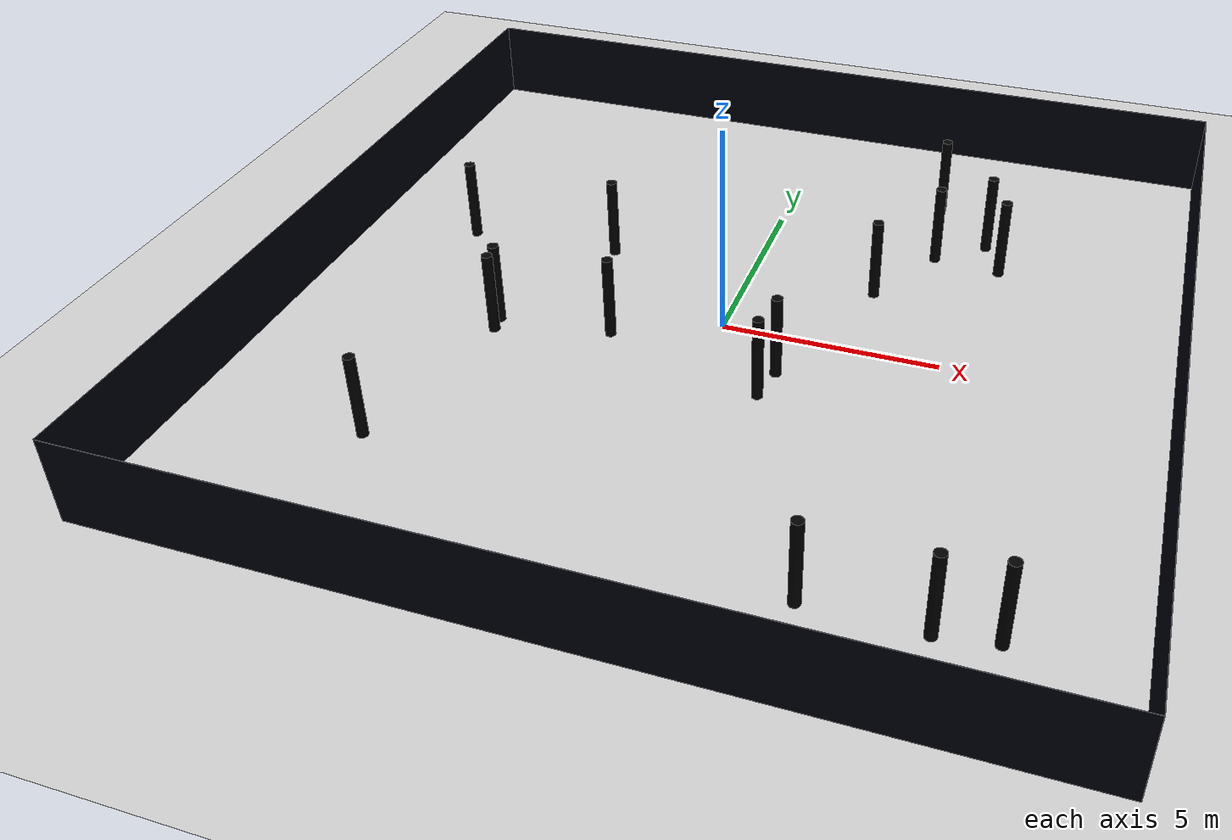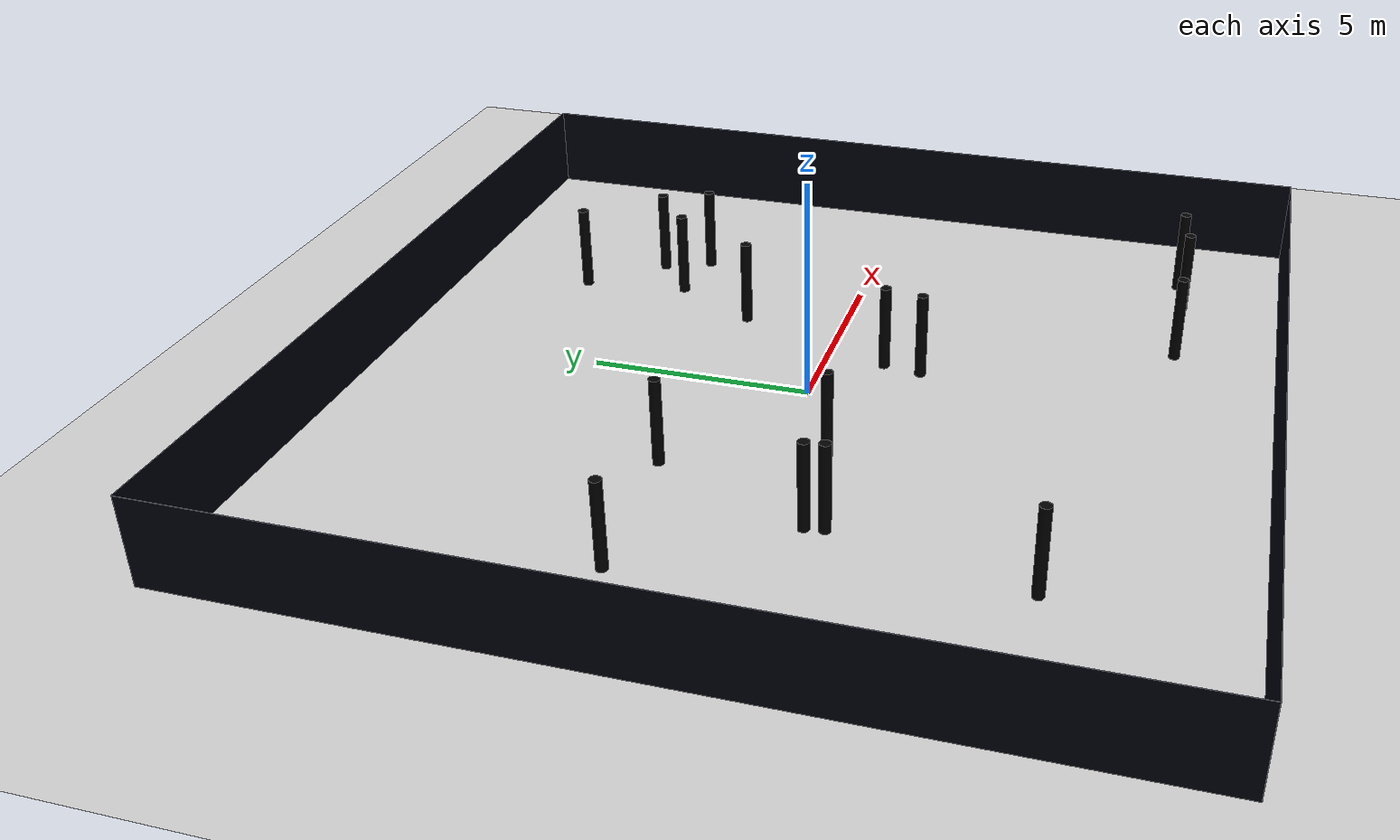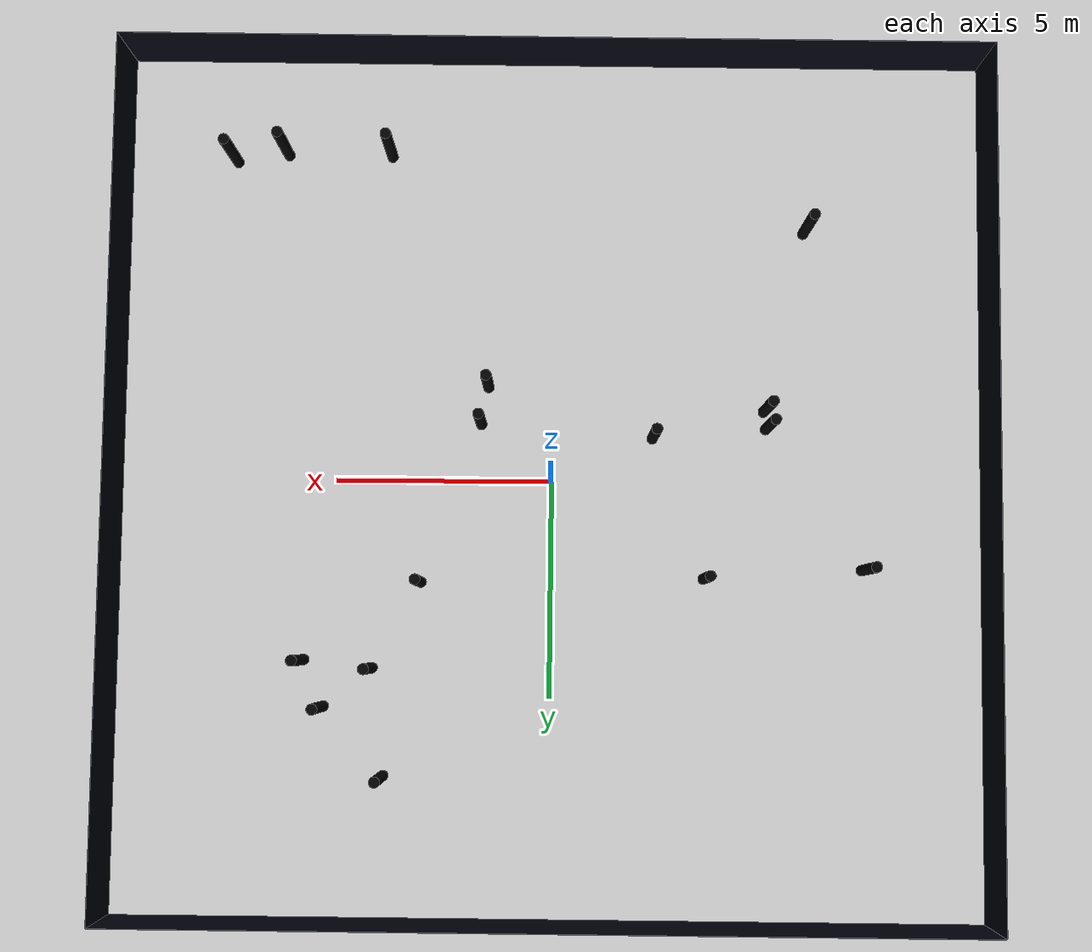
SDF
<?xml version="1.0"?>
<sdf version='1.8'>
    <world name='maze'>
        <physics name='1ms' type='ignored'>
            <max_step_size>0.003</max_step_size>
            <real_time_factor>1</real_time_factor>
            <real_time_update_rate>1000</real_time_update_rate>
        </physics>
        <plugin name='ignition::gazebo::systems::Physics' filename='ignition-gazebo-physics-system' />
        <plugin name='ignition::gazebo::systems::UserCommands' filename='ignition-gazebo-user-commands-system' />
        <plugin name='ignition::gazebo::systems::SceneBroadcaster' filename='ignition-gazebo-scene-broadcaster-system' />
        <plugin name='ignition::gazebo::systems::Contact' filename='ignition-gazebo-contact-system' />
        <light name='sun' type='directional'>
            <cast_shadows>1</cast_shadows>
            <pose>0 0 10 0 -0 0</pose>
            <diffuse>0.8 0.8 0.8 1</diffuse>
            <specular>0.2 0.2 0.2 1</specular>
            <attenuation>
                <range>1000</range>
                <constant>0.90000000000000002</constant>
                <linear>0.01</linear>
                <quadratic>0.001</quadratic>
            </attenuation>
            <direction>-0.5 0.1 -0.9</direction>
            <spot>
                <inner_angle>0</inner_angle>
                <outer_angle>0</outer_angle>
                <falloff>0</falloff>
            </spot>
        </light>
        <gravity>0 0 -9.8</gravity>
        <magnetic_field>6e-06 2.3e-05 -4.2e-05</magnetic_field>
        <atmosphere type='adiabatic' />
        <scene>
            <ambient>0.4 0.4 0.4 1</ambient>
            <background>0.7 0.7 0.7 1</background>
            <shadows>1</shadows>
        </scene>
        <model name='ground_plane'>
            <static>1</static>
            <link name='link'>
                <collision name='collision'>
                    <geometry>
                        <plane>
                            <normal>0 0 1</normal>
                            <size>100 100</size>
                        </plane>
                    </geometry>
                    <surface>
                        <friction>
                            <ode />
                        </friction>
                        <bounce />
                        <contact />
                    </surface>
                </collision>
                <visual name='visual'>
                    <geometry>
                        <plane>
                            <normal>0 0 1</normal>
                            <size>100 100</size>
                        </plane>
                    </geometry>
                    <material>
                        <ambient>0.8 0.8 0.8 1</ambient>
                        <diffuse>0.8 0.8 0.8 1</diffuse>
                        <specular>0.8 0.8 0.8 1</specular>
                    </material>
                    <plugin name='__default__' filename='__default__' />
                </visual>
            </link>
            <plugin name='__default__' filename='__default__' />
            <pose>0 0 0 0 -0 0</pose>
        </model>
        <model name='pillar_1'>
            <pose>-3.5437951631231233 2.1985635800871073 1 0 0 0</pose>
            <static>true</static>
            <link name='pillar_1_link'>
                <collision name='pillar_1_collision'>
                    <geometry>
                        <cylinder>
                            <radius>0.125</radius>
                            <length>2.0</length>
                        </cylinder>
                    </geometry>
                </collision>
                <visual name='pillar_1_visual'>
                    <geometry>
                        <cylinder>
                            <radius>0.125</radius>
                            <length>2.0</length>
                        </cylinder>
                    </geometry>
                    <material>
                        <ambient>0 0 0 1</ambient>
                        <diffuse>0 0 0 1</diffuse>
                        <specular>0 0 0 1</specular>
                    </material>
                </visual>
            </link>
        </model>
        <model name='pillar_2'>
            <pose>-2.3421461110227533 -1.065275459809806 1 0 0 0</pose>
            <static>true</static>
            <link name='pillar_2_link'>
                <collision name='pillar_2_collision'>
                    <geometry>
                        <cylinder>
                            <radius>0.125</radius>
                            <length>2.0</length>
                        </cylinder>
                    </geometry>
                </collision>
                <visual name='pillar_2_visual'>
                    <geometry>
                        <cylinder>
                            <radius>0.125</radius>
                            <length>2.0</length>
                        </cylinder>
                    </geometry>
                    <material>
                        <ambient>0 0 0 1</ambient>
                        <diffuse>0 0 0 1</diffuse>
                        <specular>0 0 0 1</specular>
                    </material>
                </visual>
            </link>
        </model>
        <model name='pillar_3'>
            <pose>-4.940489500323446 -1.721387673652126 1 0 0 0</pose>
            <static>true</static>
            <link name='pillar_3_link'>
                <collision name='pillar_3_collision'>
                    <geometry>
                        <cylinder>
                            <radius>0.125</radius>
                            <length>2.0</length>
                        </cylinder>
                    </geometry>
                </collision>
                <visual name='pillar_3_visual'>
                    <geometry>
                        <cylinder>
                            <radius>0.125</radius>
                            <length>2.0</length>
                        </cylinder>
                    </geometry>
                    <material>
                        <ambient>0 0 0 1</ambient>
                        <diffuse>0 0 0 1</diffuse>
                        <specular>0 0 0 1</specular>
                    </material>
                </visual>
            </link>
        </model>
        <model name='pillar_4'>
            <pose>3.853247368757181 -7.720480561144216 1 0 0 0</pose>
            <static>true</static>
            <link name='pillar_4_link'>
                <collision name='pillar_4_collision'>
                    <geometry>
                        <cylinder>
                            <radius>0.125</radius>
                            <length>2.0</length>
                        </cylinder>
                    </geometry>
                </collision>
                <visual name='pillar_4_visual'>
                    <geometry>
                        <cylinder>
                            <radius>0.125</radius>
                            <length>2.0</length>
                        </cylinder>
                    </geometry>
                    <material>
                        <ambient>0 0 0 1</ambient>
                        <diffuse>0 0 0 1</diffuse>
                        <specular>0 0 0 1</specular>
                    </material>
                </visual>
            </link>
        </model>
        <model name='pillar_5'>
            <pose>7.510950945952622 -7.548718916330586 1 0 0 0</pose>
            <static>true</static>
            <link name='pillar_5_link'>
                <collision name='pillar_5_collision'>
                    <geometry>
                        <cylinder>
                            <radius>0.125</radius>
                            <length>2.0</length>
                        </cylinder>
                    </geometry>
                </collision>
                <visual name='pillar_5_visual'>
                    <geometry>
                        <cylinder>
                            <radius>0.125</radius>
                            <length>2.0</length>
                        </cylinder>
                    </geometry>
                    <material>
                        <ambient>0 0 0 1</ambient>
                        <diffuse>0 0 0 1</diffuse>
                        <specular>0 0 0 1</specular>
                    </material>
                </visual>
            </link>
        </model>
        <model name='pillar_6'>
            <pose>5.208176338214347 5.227727730969731 1 0 0 0</pose>
            <static>true</static>
            <link name='pillar_6_link'>
                <collision name='pillar_6_collision'>
                    <geometry>
                        <cylinder>
                            <radius>0.125</radius>
                            <length>2.0</length>
                        </cylinder>
                    </geometry>
                </collision>
                <visual name='pillar_6_visual'>
                    <geometry>
                        <cylinder>
                            <radius>0.125</radius>
                            <length>2.0</length>
                        </cylinder>
                    </geometry>
                    <material>
                        <ambient>0 0 0 1</ambient>
                        <diffuse>0 0 0 1</diffuse>
                        <specular>0 0 0 1</specular>
                    </material>
                </visual>
            </link>
        </model>
        <model name='pillar_7'>
            <pose>5.682999989188829 4.166310411725387 1 0 0 0</pose>
            <static>true</static>
            <link name='pillar_7_link'>
                <collision name='pillar_7_collision'>
                    <geometry>
                        <cylinder>
                            <radius>0.125</radius>
                            <length>2.0</length>
                        </cylinder>
                    </geometry>
                </collision>
                <visual name='pillar_7_visual'>
                    <geometry>
                        <cylinder>
                            <radius>0.125</radius>
                            <length>2.0</length>
                        </cylinder>
                    </geometry>
                    <material>
                        <ambient>0 0 0 1</ambient>
                        <diffuse>0 0 0 1</diffuse>
                        <specular>0 0 0 1</specular>
                    </material>
                </visual>
            </link>
        </model>
        <model name='pillar_8'>
            <pose>1.6520905689598564 -1.3575832051540289 1 0 0 0</pose>
            <static>true</static>
            <link name='pillar_8_link'>
                <collision name='pillar_8_collision'>
                    <geometry>
                        <cylinder>
                            <radius>0.125</radius>
                            <length>2.0</length>
                        </cylinder>
                    </geometry>
                </collision>
                <visual name='pillar_8_visual'>
                    <geometry>
                        <cylinder>
                            <radius>0.125</radius>
                            <length>2.0</length>
                        </cylinder>
                    </geometry>
                    <material>
                        <ambient>0 0 0 1</ambient>
                        <diffuse>0 0 0 1</diffuse>
                        <specular>0 0 0 1</specular>
                    </material>
                </visual>
            </link>
        </model>
        <model name='pillar_9'>
            <pose>3.800921007631091 6.795739556117301 1 0 0 0</pose>
            <static>true</static>
            <link name='pillar_9_link'>
                <collision name='pillar_9_collision'>
                    <geometry>
                        <cylinder>
                            <radius>0.125</radius>
                            <length>2.0</length>
                        </cylinder>
                    </geometry>
                </collision>
                <visual name='pillar_9_visual'>
                    <geometry>
                        <cylinder>
                            <radius>0.125</radius>
                            <length>2.0</length>
                        </cylinder>
                    </geometry>
                    <material>
                        <ambient>0 0 0 1</ambient>
                        <diffuse>0 0 0 1</diffuse>
                        <specular>0 0 0 1</specular>
                    </material>
                </visual>
            </link>
        </model>
        <model name='pillar_10'>
            <pose>-4.990511044574605 -1.3122407286600204 1 0 0 0</pose>
            <static>true</static>
            <link name='pillar_10_link'>
                <collision name='pillar_10_collision'>
                    <geometry>
                        <cylinder>
                            <radius>0.125</radius>
                            <length>2.0</length>
                        </cylinder>
                    </geometry>
                </collision>
                <visual name='pillar_10_visual'>
                    <geometry>
                        <cylinder>
                            <radius>0.125</radius>
                            <length>2.0</length>
                        </cylinder>
                    </geometry>
                    <material>
                        <ambient>0 0 0 1</ambient>
                        <diffuse>0 0 0 1</diffuse>
                        <specular>0 0 0 1</specular>
                    </material>
                </visual>
            </link>
        </model>
        <model name='pillar_11'>
            <pose>3.000989318757812 2.3467255143376207 1 0 0 0</pose>
            <static>true</static>
            <link name='pillar_11_link'>
                <collision name='pillar_11_collision'>
                    <geometry>
                        <cylinder>
                            <radius>0.125</radius>
                            <length>2.0</length>
                        </cylinder>
                    </geometry>
                </collision>
                <visual name='pillar_11_visual'>
                    <geometry>
                        <cylinder>
                            <radius>0.125</radius>
                            <length>2.0</length>
                        </cylinder>
                    </geometry>
                    <material>
                        <ambient>0 0 0 1</ambient>
                        <diffuse>0 0 0 1</diffuse>
                        <specular>0 0 0 1</specular>
                    </material>
                </visual>
            </link>
        </model>
        <model name='pillar_12'>
            <pose>4.097755113517493 4.334946784615756 1 0 0 0</pose>
            <static>true</static>
            <link name='pillar_12_link'>
                <collision name='pillar_12_collision'>
                    <geometry>
                        <cylinder>
                            <radius>0.125</radius>
                            <length>2.0</length>
                        </cylinder>
                    </geometry>
                </collision>
                <visual name='pillar_12_visual'>
                    <geometry>
                        <cylinder>
                            <radius>0.125</radius>
                            <length>2.0</length>
                        </cylinder>
                    </geometry>
                    <material>
                        <ambient>0 0 0 1</ambient>
                        <diffuse>0 0 0 1</diffuse>
                        <specular>0 0 0 1</specular>
                    </material>
                </visual>
            </link>
        </model>
        <model name='pillar_13'>
            <pose>-5.868337978349114 -5.974725593209374 1 0 0 0</pose>
            <static>true</static>
            <link name='pillar_13_link'>
                <collision name='pillar_13_collision'>
                    <geometry>
                        <cylinder>
                            <radius>0.125</radius>
                            <length>2.0</length>
                        </cylinder>
                    </geometry>
                </collision>
                <visual name='pillar_13_visual'>
                    <geometry>
                        <cylinder>
                            <radius>0.125</radius>
                            <length>2.0</length>
                        </cylinder>
                    </geometry>
                    <material>
                        <ambient>0 0 0 1</ambient>
                        <diffuse>0 0 0 1</diffuse>
                        <specular>0 0 0 1</specular>
                    </material>
                </visual>
            </link>
        </model>
        <model name='pillar_14'>
            <pose>6.306165883773309 -7.728918834011353 1 0 0 0</pose>
            <static>true</static>
            <link name='pillar_14_link'>
                <collision name='pillar_14_collision'>
                    <geometry>
                        <cylinder>
                            <radius>0.125</radius>
                            <length>2.0</length>
                        </cylinder>
                    </geometry>
                </collision>
                <visual name='pillar_14_visual'>
                    <geometry>
                        <cylinder>
                            <radius>0.125</radius>
                            <length>2.0</length>
                        </cylinder>
                    </geometry>
                    <material>
                        <ambient>0 0 0 1</ambient>
                        <diffuse>0 0 0 1</diffuse>
                        <specular>0 0 0 1</specular>
                    </material>
                </visual>
            </link>
        </model>
        <model name='pillar_15'>
            <pose>-7.219154891635789 1.9585583688994994 1 0 0 0</pose>
            <static>true</static>
            <link name='pillar_15_link'>
                <collision name='pillar_15_collision'>
                    <geometry>
                        <cylinder>
                            <radius>0.125</radius>
                            <length>2.0</length>
                        </cylinder>
                    </geometry>
                </collision>
                <visual name='pillar_15_visual'>
                    <geometry>
                        <cylinder>
                            <radius>0.125</radius>
                            <length>2.0</length>
                        </cylinder>
                    </geometry>
                    <material>
                        <ambient>0 0 0 1</ambient>
                        <diffuse>0 0 0 1</diffuse>
                        <specular>0 0 0 1</specular>
                    </material>
                </visual>
            </link>
        </model>
        <model name='pillar_16'>
            <pose>1.4958833492901231 -2.230616036230728 1 0 0 0</pose>
            <static>true</static>
            <link name='pillar_16_link'>
                <collision name='pillar_16_collision'>
                    <geometry>
                        <cylinder>
                            <radius>0.125</radius>
                            <length>2.0</length>
                        </cylinder>
                    </geometry>
                </collision>
                <visual name='pillar_16_visual'>
                    <geometry>
                        <cylinder>
                            <radius>0.125</radius>
                            <length>2.0</length>
                        </cylinder>
                    </geometry>
                    <material>
                        <ambient>0 0 0 1</ambient>
                        <diffuse>0 0 0 1</diffuse>
                        <specular>0 0 0 1</specular>
                    </material>
                </visual>
            </link>
        </model>

        <model name='border'>
            <pose>0 0 1 0 0 0</pose>
            <static>true</static>
            <link name='wall1'>
                <pose>-10.005 0 0 0 0 0</pose>
                <static>true</static>
                <collision name='wall1_collision'>
                    <geometry>
                        <box>
                            <size>0.01 20 2</size>
                        </box>
                    </geometry>
                </collision>
                <visual name='wall1_visual'>
                    <geometry>
                        <box>
                            <size>0.01 20 2</size>
                        </box>
                    </geometry>
                    <material>
                        <ambient>0.1 0.1 0.1 1</ambient>
                        <diffuse>0 0.01 0.05 1</diffuse>
                        <specular>0 0.01 0.05 1</specular>
                    </material>
                </visual>
            </link>
            <link name='wall2'>
                <pose>10.005 0 0 0 0 0</pose>
                <static>true</static>
                <collision name='wall2_collision'>
                    <geometry>
                        <box>
                            <size>0.01 20 2</size>
                        </box>
                    </geometry>
                </collision>
                <visual name='wall2_visual'>
                    <geometry>
                        <box>
                            <size>0.01 20 2</size>
                        </box>
                    </geometry>
                    <material>
                        <ambient>0.1 0.1 0.1 1</ambient>
                        <diffuse>0 0.01 0.05 1</diffuse>
                        <specular>0 0.01 0.05 1</specular>
                    </material>
                </visual>
            </link>
            <link name='wall3'>
                <pose>0 10.005 0 0 0 0</pose>
                <static>true</static>
                <collision name='wall3_collision'>
                    <geometry>
                        <box>
                            <size>20 0.01 2</size>
                        </box>
                    </geometry>
                </collision>
                <visual name='wall3_visual'>
                    <geometry>
                        <box>
                            <size>20 0.01 2</size>
                        </box>
                    </geometry>
                    <material>
                        <ambient>0.1 0.1 0.1 1</ambient>
                        <diffuse>0 0.01 0.05 1</diffuse>
                        <specular>0 0.01 0.05 1</specular>
                    </material>
                </visual>
            </link>
            <link name='wall4'>
                <pose>0 -10.005 0 0 0 0</pose>
                <static>true</static>
                <collision name='wall4_collision'>
                    <geometry>
                        <box>
                            <size>20 0.01 2</size>
                        </box>
                    </geometry>
                    <material>
                        <ambient>0.1 0.1 0.1 1</ambient>
                        <diffuse>0 0.01 0.05 1</diffuse>
                        <specular>0 0.01 0.05 1</specular>
                    </material>
                </collision>
                <visual name='wall4_visual'>
                    <geometry>
                        <box>
                            <size>20 0.01 2</size>
                        </box>
                    </geometry>
                    <material>
                        <ambient>0.1 0.1 0.1 1</ambient>
                        <diffuse>0 0.01 0.05 1</diffuse>
                        <specular>0 0.01 0.05 1</specular>
                    </material>
                </visual>
            </link>
        </model>

    </world>
</sdf>
